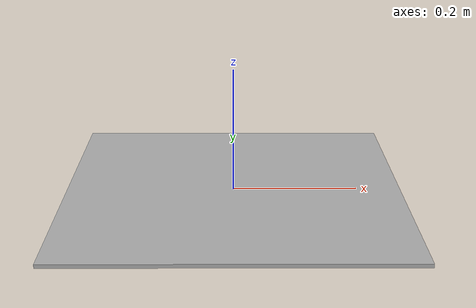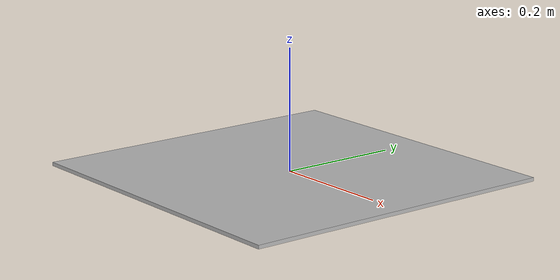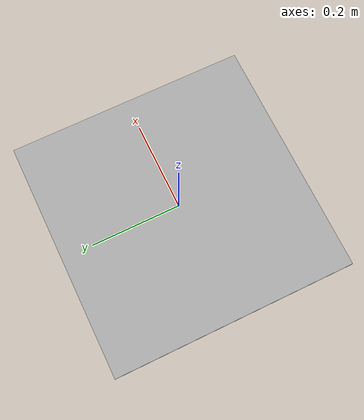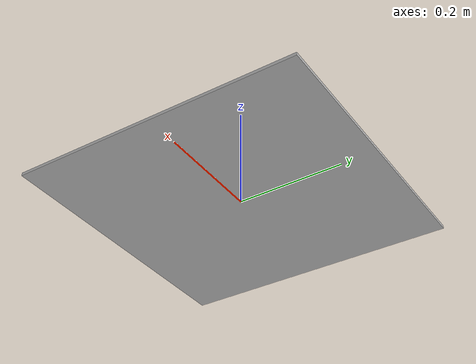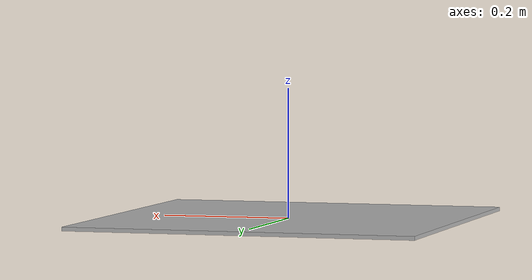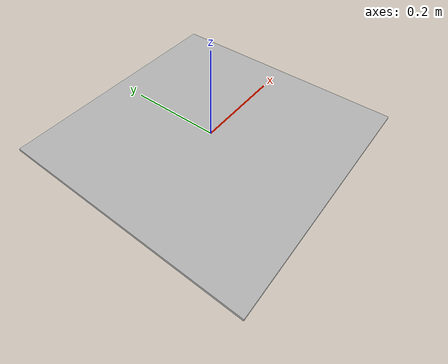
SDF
<?xml version="1.0" ?>
<sdf version="1.4">
  <model name="marker_900">
    <static>1</static>
    <link name="marker">
      <gravity>false</gravity>
      <visual name="visual">
        <geometry>
          <box>
             <size>0.54 0.54 0.006</size>
            <!-- SIZE OF THE MARKER + MARGIN -->
          </box>
        </geometry>
        <material>
          <script>
	    <uri>model://marker_900/material/scripts</uri>
	    <uri>model://marker_900/material/textures</uri>
            <name>Aruco/marker_900</name>
          </script>
        </material>
      </visual>
      <collision name="collision">
        <geometry>
          <box>
            <size>0.54 0.54 0.12</size>
            <!-- SIZE OF THE MARKER + MARGIN -->
          </box>
        </geometry>
      </collision>
    </link>
  </model>
</sdf>
